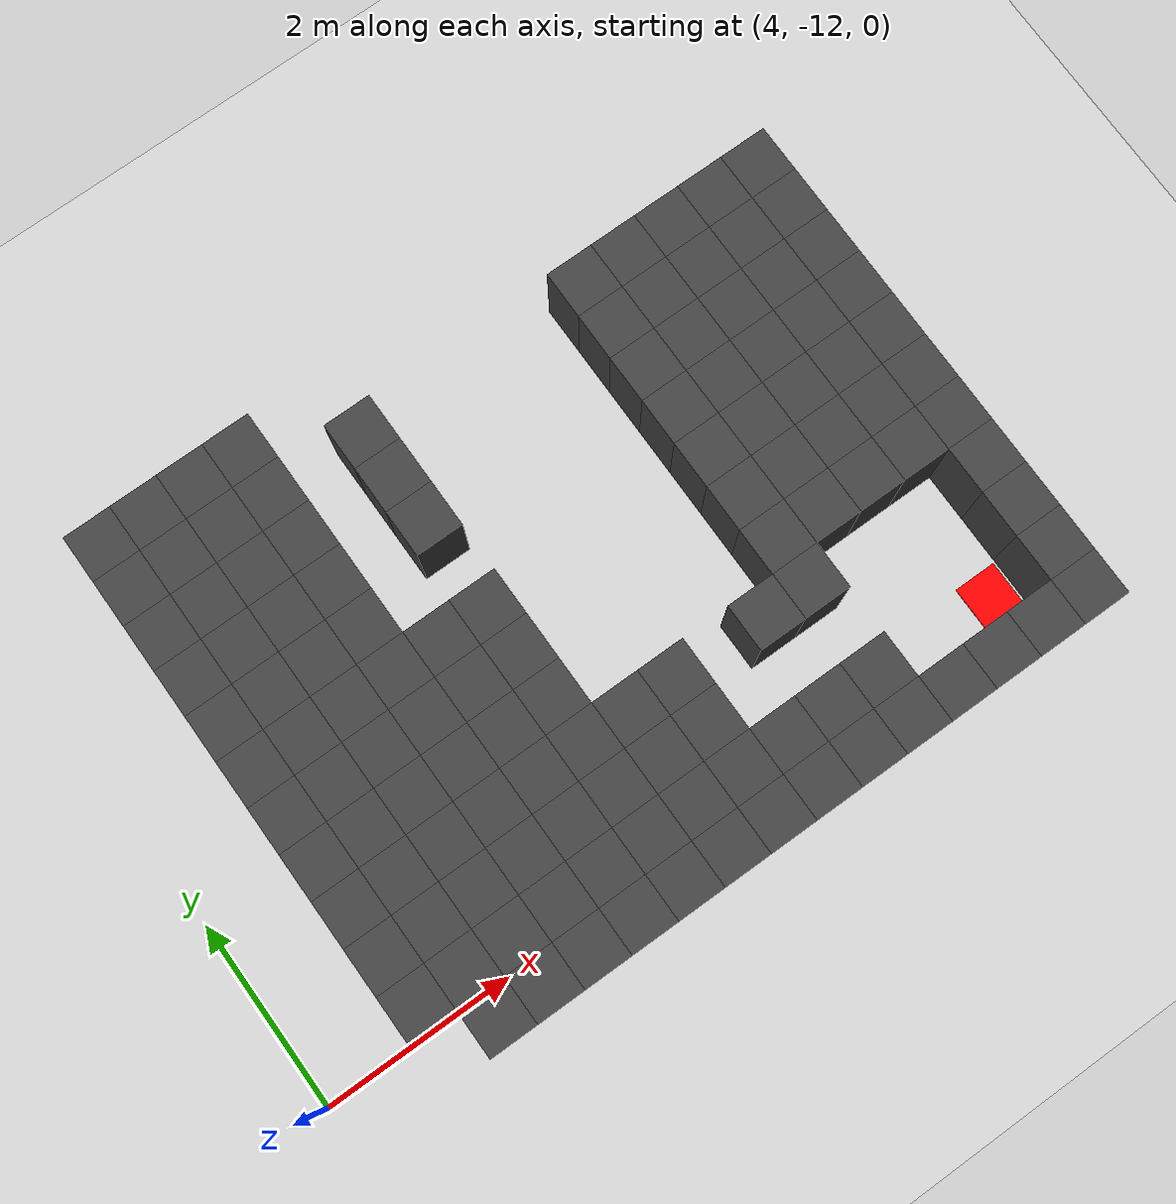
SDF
<sdf version="1.7">
 <world name="map_10726">
  <model name="ground_plane">
   <static>true</static>
   <link name="link">
    <collision name="collision">
     <geometry><plane><normal>0 0 1</normal><size>200 200</size></plane></geometry>
    </collision>
    <visual name="visual">
     <geometry><plane><normal>0 0 1</normal><size>200 200</size></plane></geometry>
     <material><ambient>0.8 0.8 0.8 1</ambient><diffuse>0.8 0.8 0.8 1</diffuse></material>
    </visual>
   </link>
  </model>
  <model name="maze_environment">
   <static>true</static>
   <link name="wall_1630">
    <pose>5.250 -6.750 0.500 0 0 0</pose>
    <collision name="col"><geometry><box><size>0.5 0.5 1.0</size></box></geometry></collision>
    <visual name="vis">
     <geometry><box><size>0.5 0.5 1.0</size></box></geometry>
     <material><ambient>0.15 0.15 0.15 1</ambient><diffuse>0.25 0.25 0.25 1</diffuse></material>
    </visual>
   </link>
   <link name="wall_1631">
    <pose>5.750 -6.750 0.500 0 0 0</pose>
    <collision name="col"><geometry><box><size>0.5 0.5 1.0</size></box></geometry></collision>
    <visual name="vis">
     <geometry><box><size>0.5 0.5 1.0</size></box></geometry>
     <material><ambient>0.15 0.15 0.15 1</ambient><diffuse>0.25 0.25 0.25 1</diffuse></material>
    </visual>
   </link>
   <link name="wall_1632">
    <pose>6.250 -6.750 0.500 0 0 0</pose>
    <collision name="col"><geometry><box><size>0.5 0.5 1.0</size></box></geometry></collision>
    <visual name="vis">
     <geometry><box><size>0.5 0.5 1.0</size></box></geometry>
     <material><ambient>0.15 0.15 0.15 1</ambient><diffuse>0.25 0.25 0.25 1</diffuse></material>
    </visual>
   </link>
   <link name="wall_1633">
    <pose>6.750 -6.750 0.500 0 0 0</pose>
    <collision name="col"><geometry><box><size>0.5 0.5 1.0</size></box></geometry></collision>
    <visual name="vis">
     <geometry><box><size>0.5 0.5 1.0</size></box></geometry>
     <material><ambient>0.15 0.15 0.15 1</ambient><diffuse>0.25 0.25 0.25 1</diffuse></material>
    </visual>
   </link>
   <link name="wall_1671">
    <pose>5.250 -7.250 0.500 0 0 0</pose>
    <collision name="col"><geometry><box><size>0.5 0.5 1.0</size></box></geometry></collision>
    <visual name="vis">
     <geometry><box><size>0.5 0.5 1.0</size></box></geometry>
     <material><ambient>0.15 0.15 0.15 1</ambient><diffuse>0.25 0.25 0.25 1</diffuse></material>
    </visual>
   </link>
   <link name="wall_1672">
    <pose>5.750 -7.250 0.500 0 0 0</pose>
    <collision name="col"><geometry><box><size>0.5 0.5 1.0</size></box></geometry></collision>
    <visual name="vis">
     <geometry><box><size>0.5 0.5 1.0</size></box></geometry>
     <material><ambient>0.15 0.15 0.15 1</ambient><diffuse>0.25 0.25 0.25 1</diffuse></material>
    </visual>
   </link>
   <link name="wall_1673">
    <pose>6.250 -7.250 0.500 0 0 0</pose>
    <collision name="col"><geometry><box><size>0.5 0.5 1.0</size></box></geometry></collision>
    <visual name="vis">
     <geometry><box><size>0.5 0.5 1.0</size></box></geometry>
     <material><ambient>0.15 0.15 0.15 1</ambient><diffuse>0.25 0.25 0.25 1</diffuse></material>
    </visual>
   </link>
   <link name="wall_1674">
    <pose>6.750 -7.250 0.500 0 0 0</pose>
    <collision name="col"><geometry><box><size>0.5 0.5 1.0</size></box></geometry></collision>
    <visual name="vis">
     <geometry><box><size>0.5 0.5 1.0</size></box></geometry>
     <material><ambient>0.15 0.15 0.15 1</ambient><diffuse>0.25 0.25 0.25 1</diffuse></material>
    </visual>
   </link>
   <link name="wall_1675">
    <pose>7.750 -7.250 0.500 0 0 0</pose>
    <collision name="col"><geometry><box><size>0.5 0.5 1.0</size></box></geometry></collision>
    <visual name="vis">
     <geometry><box><size>0.5 0.5 1.0</size></box></geometry>
     <material><ambient>0.15 0.15 0.15 1</ambient><diffuse>0.25 0.25 0.25 1</diffuse></material>
    </visual>
   </link>
   <link name="wall_1676">
    <pose>10.250 -7.250 0.500 0 0 0</pose>
    <collision name="col"><geometry><box><size>0.5 0.5 1.0</size></box></geometry></collision>
    <visual name="vis">
     <geometry><box><size>0.5 0.5 1.0</size></box></geometry>
     <material><ambient>0.15 0.15 0.15 1</ambient><diffuse>0.25 0.25 0.25 1</diffuse></material>
    </visual>
   </link>
   <link name="wall_1677">
    <pose>10.750 -7.250 0.500 0 0 0</pose>
    <collision name="col"><geometry><box><size>0.5 0.5 1.0</size></box></geometry></collision>
    <visual name="vis">
     <geometry><box><size>0.5 0.5 1.0</size></box></geometry>
     <material><ambient>0.15 0.15 0.15 1</ambient><diffuse>0.25 0.25 0.25 1</diffuse></material>
    </visual>
   </link>
   <link name="wall_1678">
    <pose>11.250 -7.250 0.500 0 0 0</pose>
    <collision name="col"><geometry><box><size>0.5 0.5 1.0</size></box></geometry></collision>
    <visual name="vis">
     <geometry><box><size>0.5 0.5 1.0</size></box></geometry>
     <material><ambient>0.15 0.15 0.15 1</ambient><diffuse>0.25 0.25 0.25 1</diffuse></material>
    </visual>
   </link>
   <link name="wall_1679">
    <pose>11.750 -7.250 0.500 0 0 0</pose>
    <collision name="col"><geometry><box><size>0.5 0.5 1.0</size></box></geometry></collision>
    <visual name="vis">
     <geometry><box><size>0.5 0.5 1.0</size></box></geometry>
     <material><ambient>0.15 0.15 0.15 1</ambient><diffuse>0.25 0.25 0.25 1</diffuse></material>
    </visual>
   </link>
   <link name="wall_1680">
    <pose>12.250 -7.250 0.500 0 0 0</pose>
    <collision name="col"><geometry><box><size>0.5 0.5 1.0</size></box></geometry></collision>
    <visual name="vis">
     <geometry><box><size>0.5 0.5 1.0</size></box></geometry>
     <material><ambient>0.15 0.15 0.15 1</ambient><diffuse>0.25 0.25 0.25 1</diffuse></material>
    </visual>
   </link>
   <link name="wall_1708">
    <pose>5.250 -7.750 0.500 0 0 0</pose>
    <collision name="col"><geometry><box><size>0.5 0.5 1.0</size></box></geometry></collision>
    <visual name="vis">
     <geometry><box><size>0.5 0.5 1.0</size></box></geometry>
     <material><ambient>0.15 0.15 0.15 1</ambient><diffuse>0.25 0.25 0.25 1</diffuse></material>
    </visual>
   </link>
   <link name="wall_1709">
    <pose>5.750 -7.750 0.500 0 0 0</pose>
    <collision name="col"><geometry><box><size>0.5 0.5 1.0</size></box></geometry></collision>
    <visual name="vis">
     <geometry><box><size>0.5 0.5 1.0</size></box></geometry>
     <material><ambient>0.15 0.15 0.15 1</ambient><diffuse>0.25 0.25 0.25 1</diffuse></material>
    </visual>
   </link>
   <link name="wall_1710">
    <pose>6.250 -7.750 0.500 0 0 0</pose>
    <collision name="col"><geometry><box><size>0.5 0.5 1.0</size></box></geometry></collision>
    <visual name="vis">
     <geometry><box><size>0.5 0.5 1.0</size></box></geometry>
     <material><ambient>0.15 0.15 0.15 1</ambient><diffuse>0.25 0.25 0.25 1</diffuse></material>
    </visual>
   </link>
   <link name="wall_1711">
    <pose>6.750 -7.750 0.500 0 0 0</pose>
    <collision name="col"><geometry><box><size>0.5 0.5 1.0</size></box></geometry></collision>
    <visual name="vis">
     <geometry><box><size>0.5 0.5 1.0</size></box></geometry>
     <material><ambient>0.15 0.15 0.15 1</ambient><diffuse>0.25 0.25 0.25 1</diffuse></material>
    </visual>
   </link>
   <link name="wall_1712">
    <pose>7.750 -7.750 0.500 0 0 0</pose>
    <collision name="col"><geometry><box><size>0.5 0.5 1.0</size></box></geometry></collision>
    <visual name="vis">
     <geometry><box><size>0.5 0.5 1.0</size></box></geometry>
     <material><ambient>0.15 0.15 0.15 1</ambient><diffuse>0.25 0.25 0.25 1</diffuse></material>
    </visual>
   </link>
   <link name="wall_1713">
    <pose>10.250 -7.750 0.500 0 0 0</pose>
    <collision name="col"><geometry><box><size>0.5 0.5 1.0</size></box></geometry></collision>
    <visual name="vis">
     <geometry><box><size>0.5 0.5 1.0</size></box></geometry>
     <material><ambient>0.15 0.15 0.15 1</ambient><diffuse>0.25 0.25 0.25 1</diffuse></material>
    </visual>
   </link>
   <link name="wall_1714">
    <pose>10.750 -7.750 0.500 0 0 0</pose>
    <collision name="col"><geometry><box><size>0.5 0.5 1.0</size></box></geometry></collision>
    <visual name="vis">
     <geometry><box><size>0.5 0.5 1.0</size></box></geometry>
     <material><ambient>0.15 0.15 0.15 1</ambient><diffuse>0.25 0.25 0.25 1</diffuse></material>
    </visual>
   </link>
   <link name="wall_1715">
    <pose>11.250 -7.750 0.500 0 0 0</pose>
    <collision name="col"><geometry><box><size>0.5 0.5 1.0</size></box></geometry></collision>
    <visual name="vis">
     <geometry><box><size>0.5 0.5 1.0</size></box></geometry>
     <material><ambient>0.15 0.15 0.15 1</ambient><diffuse>0.25 0.25 0.25 1</diffuse></material>
    </visual>
   </link>
   <link name="wall_1716">
    <pose>11.750 -7.750 0.500 0 0 0</pose>
    <collision name="col"><geometry><box><size>0.5 0.5 1.0</size></box></geometry></collision>
    <visual name="vis">
     <geometry><box><size>0.5 0.5 1.0</size></box></geometry>
     <material><ambient>0.15 0.15 0.15 1</ambient><diffuse>0.25 0.25 0.25 1</diffuse></material>
    </visual>
   </link>
   <link name="wall_1717">
    <pose>12.250 -7.750 0.500 0 0 0</pose>
    <collision name="col"><geometry><box><size>0.5 0.5 1.0</size></box></geometry></collision>
    <visual name="vis">
     <geometry><box><size>0.5 0.5 1.0</size></box></geometry>
     <material><ambient>0.15 0.15 0.15 1</ambient><diffuse>0.25 0.25 0.25 1</diffuse></material>
    </visual>
   </link>
   <link name="wall_1745">
    <pose>5.250 -8.250 0.500 0 0 0</pose>
    <collision name="col"><geometry><box><size>0.5 0.5 1.0</size></box></geometry></collision>
    <visual name="vis">
     <geometry><box><size>0.5 0.5 1.0</size></box></geometry>
     <material><ambient>0.15 0.15 0.15 1</ambient><diffuse>0.25 0.25 0.25 1</diffuse></material>
    </visual>
   </link>
   <link name="wall_1746">
    <pose>5.750 -8.250 0.500 0 0 0</pose>
    <collision name="col"><geometry><box><size>0.5 0.5 1.0</size></box></geometry></collision>
    <visual name="vis">
     <geometry><box><size>0.5 0.5 1.0</size></box></geometry>
     <material><ambient>0.15 0.15 0.15 1</ambient><diffuse>0.25 0.25 0.25 1</diffuse></material>
    </visual>
   </link>
   <link name="wall_1747">
    <pose>6.250 -8.250 0.500 0 0 0</pose>
    <collision name="col"><geometry><box><size>0.5 0.5 1.0</size></box></geometry></collision>
    <visual name="vis">
     <geometry><box><size>0.5 0.5 1.0</size></box></geometry>
     <material><ambient>0.15 0.15 0.15 1</ambient><diffuse>0.25 0.25 0.25 1</diffuse></material>
    </visual>
   </link>
   <link name="wall_1748">
    <pose>6.750 -8.250 0.500 0 0 0</pose>
    <collision name="col"><geometry><box><size>0.5 0.5 1.0</size></box></geometry></collision>
    <visual name="vis">
     <geometry><box><size>0.5 0.5 1.0</size></box></geometry>
     <material><ambient>0.15 0.15 0.15 1</ambient><diffuse>0.25 0.25 0.25 1</diffuse></material>
    </visual>
   </link>
   <link name="wall_1749">
    <pose>7.750 -8.250 0.500 0 0 0</pose>
    <collision name="col"><geometry><box><size>0.5 0.5 1.0</size></box></geometry></collision>
    <visual name="vis">
     <geometry><box><size>0.5 0.5 1.0</size></box></geometry>
     <material><ambient>0.15 0.15 0.15 1</ambient><diffuse>0.25 0.25 0.25 1</diffuse></material>
    </visual>
   </link>
   <link name="wall_1750">
    <pose>10.250 -8.250 0.500 0 0 0</pose>
    <collision name="col"><geometry><box><size>0.5 0.5 1.0</size></box></geometry></collision>
    <visual name="vis">
     <geometry><box><size>0.5 0.5 1.0</size></box></geometry>
     <material><ambient>0.15 0.15 0.15 1</ambient><diffuse>0.25 0.25 0.25 1</diffuse></material>
    </visual>
   </link>
   <link name="wall_1751">
    <pose>10.750 -8.250 0.500 0 0 0</pose>
    <collision name="col"><geometry><box><size>0.5 0.5 1.0</size></box></geometry></collision>
    <visual name="vis">
     <geometry><box><size>0.5 0.5 1.0</size></box></geometry>
     <material><ambient>0.15 0.15 0.15 1</ambient><diffuse>0.25 0.25 0.25 1</diffuse></material>
    </visual>
   </link>
   <link name="wall_1752">
    <pose>11.250 -8.250 0.500 0 0 0</pose>
    <collision name="col"><geometry><box><size>0.5 0.5 1.0</size></box></geometry></collision>
    <visual name="vis">
     <geometry><box><size>0.5 0.5 1.0</size></box></geometry>
     <material><ambient>0.15 0.15 0.15 1</ambient><diffuse>0.25 0.25 0.25 1</diffuse></material>
    </visual>
   </link>
   <link name="wall_1753">
    <pose>11.750 -8.250 0.500 0 0 0</pose>
    <collision name="col"><geometry><box><size>0.5 0.5 1.0</size></box></geometry></collision>
    <visual name="vis">
     <geometry><box><size>0.5 0.5 1.0</size></box></geometry>
     <material><ambient>0.15 0.15 0.15 1</ambient><diffuse>0.25 0.25 0.25 1</diffuse></material>
    </visual>
   </link>
   <link name="wall_1754">
    <pose>12.250 -8.250 0.500 0 0 0</pose>
    <collision name="col"><geometry><box><size>0.5 0.5 1.0</size></box></geometry></collision>
    <visual name="vis">
     <geometry><box><size>0.5 0.5 1.0</size></box></geometry>
     <material><ambient>0.15 0.15 0.15 1</ambient><diffuse>0.25 0.25 0.25 1</diffuse></material>
    </visual>
   </link>
   <link name="wall_1782">
    <pose>5.250 -8.750 0.500 0 0 0</pose>
    <collision name="col"><geometry><box><size>0.5 0.5 1.0</size></box></geometry></collision>
    <visual name="vis">
     <geometry><box><size>0.5 0.5 1.0</size></box></geometry>
     <material><ambient>0.15 0.15 0.15 1</ambient><diffuse>0.25 0.25 0.25 1</diffuse></material>
    </visual>
   </link>
   <link name="wall_1783">
    <pose>5.750 -8.750 0.500 0 0 0</pose>
    <collision name="col"><geometry><box><size>0.5 0.5 1.0</size></box></geometry></collision>
    <visual name="vis">
     <geometry><box><size>0.5 0.5 1.0</size></box></geometry>
     <material><ambient>0.15 0.15 0.15 1</ambient><diffuse>0.25 0.25 0.25 1</diffuse></material>
    </visual>
   </link>
   <link name="wall_1784">
    <pose>6.250 -8.750 0.500 0 0 0</pose>
    <collision name="col"><geometry><box><size>0.5 0.5 1.0</size></box></geometry></collision>
    <visual name="vis">
     <geometry><box><size>0.5 0.5 1.0</size></box></geometry>
     <material><ambient>0.15 0.15 0.15 1</ambient><diffuse>0.25 0.25 0.25 1</diffuse></material>
    </visual>
   </link>
   <link name="wall_1785">
    <pose>6.750 -8.750 0.500 0 0 0</pose>
    <collision name="col"><geometry><box><size>0.5 0.5 1.0</size></box></geometry></collision>
    <visual name="vis">
     <geometry><box><size>0.5 0.5 1.0</size></box></geometry>
     <material><ambient>0.15 0.15 0.15 1</ambient><diffuse>0.25 0.25 0.25 1</diffuse></material>
    </visual>
   </link>
   <link name="wall_1786">
    <pose>10.250 -8.750 0.500 0 0 0</pose>
    <collision name="col"><geometry><box><size>0.5 0.5 1.0</size></box></geometry></collision>
    <visual name="vis">
     <geometry><box><size>0.5 0.5 1.0</size></box></geometry>
     <material><ambient>0.15 0.15 0.15 1</ambient><diffuse>0.25 0.25 0.25 1</diffuse></material>
    </visual>
   </link>
   <link name="wall_1787">
    <pose>10.750 -8.750 0.500 0 0 0</pose>
    <collision name="col"><geometry><box><size>0.5 0.5 1.0</size></box></geometry></collision>
    <visual name="vis">
     <geometry><box><size>0.5 0.5 1.0</size></box></geometry>
     <material><ambient>0.15 0.15 0.15 1</ambient><diffuse>0.25 0.25 0.25 1</diffuse></material>
    </visual>
   </link>
   <link name="wall_1788">
    <pose>11.250 -8.750 0.500 0 0 0</pose>
    <collision name="col"><geometry><box><size>0.5 0.5 1.0</size></box></geometry></collision>
    <visual name="vis">
     <geometry><box><size>0.5 0.5 1.0</size></box></geometry>
     <material><ambient>0.15 0.15 0.15 1</ambient><diffuse>0.25 0.25 0.25 1</diffuse></material>
    </visual>
   </link>
   <link name="wall_1789">
    <pose>11.750 -8.750 0.500 0 0 0</pose>
    <collision name="col"><geometry><box><size>0.5 0.5 1.0</size></box></geometry></collision>
    <visual name="vis">
     <geometry><box><size>0.5 0.5 1.0</size></box></geometry>
     <material><ambient>0.15 0.15 0.15 1</ambient><diffuse>0.25 0.25 0.25 1</diffuse></material>
    </visual>
   </link>
   <link name="wall_1790">
    <pose>12.250 -8.750 0.500 0 0 0</pose>
    <collision name="col"><geometry><box><size>0.5 0.5 1.0</size></box></geometry></collision>
    <visual name="vis">
     <geometry><box><size>0.5 0.5 1.0</size></box></geometry>
     <material><ambient>0.15 0.15 0.15 1</ambient><diffuse>0.25 0.25 0.25 1</diffuse></material>
    </visual>
   </link>
   <link name="wall_1818">
    <pose>5.250 -9.250 0.500 0 0 0</pose>
    <collision name="col"><geometry><box><size>0.5 0.5 1.0</size></box></geometry></collision>
    <visual name="vis">
     <geometry><box><size>0.5 0.5 1.0</size></box></geometry>
     <material><ambient>0.15 0.15 0.15 1</ambient><diffuse>0.25 0.25 0.25 1</diffuse></material>
    </visual>
   </link>
   <link name="wall_1819">
    <pose>5.750 -9.250 0.500 0 0 0</pose>
    <collision name="col"><geometry><box><size>0.5 0.5 1.0</size></box></geometry></collision>
    <visual name="vis">
     <geometry><box><size>0.5 0.5 1.0</size></box></geometry>
     <material><ambient>0.15 0.15 0.15 1</ambient><diffuse>0.25 0.25 0.25 1</diffuse></material>
    </visual>
   </link>
   <link name="wall_1820">
    <pose>6.250 -9.250 0.500 0 0 0</pose>
    <collision name="col"><geometry><box><size>0.5 0.5 1.0</size></box></geometry></collision>
    <visual name="vis">
     <geometry><box><size>0.5 0.5 1.0</size></box></geometry>
     <material><ambient>0.15 0.15 0.15 1</ambient><diffuse>0.25 0.25 0.25 1</diffuse></material>
    </visual>
   </link>
   <link name="wall_1821">
    <pose>6.750 -9.250 0.500 0 0 0</pose>
    <collision name="col"><geometry><box><size>0.5 0.5 1.0</size></box></geometry></collision>
    <visual name="vis">
     <geometry><box><size>0.5 0.5 1.0</size></box></geometry>
     <material><ambient>0.15 0.15 0.15 1</ambient><diffuse>0.25 0.25 0.25 1</diffuse></material>
    </visual>
   </link>
   <link name="wall_1822">
    <pose>7.250 -9.250 0.500 0 0 0</pose>
    <collision name="col"><geometry><box><size>0.5 0.5 1.0</size></box></geometry></collision>
    <visual name="vis">
     <geometry><box><size>0.5 0.5 1.0</size></box></geometry>
     <material><ambient>0.15 0.15 0.15 1</ambient><diffuse>0.25 0.25 0.25 1</diffuse></material>
    </visual>
   </link>
   <link name="wall_1823">
    <pose>7.750 -9.250 0.500 0 0 0</pose>
    <collision name="col"><geometry><box><size>0.5 0.5 1.0</size></box></geometry></collision>
    <visual name="vis">
     <geometry><box><size>0.5 0.5 1.0</size></box></geometry>
     <material><ambient>0.15 0.15 0.15 1</ambient><diffuse>0.25 0.25 0.25 1</diffuse></material>
    </visual>
   </link>
   <link name="wall_1824">
    <pose>10.250 -9.250 0.500 0 0 0</pose>
    <collision name="col"><geometry><box><size>0.5 0.5 1.0</size></box></geometry></collision>
    <visual name="vis">
     <geometry><box><size>0.5 0.5 1.0</size></box></geometry>
     <material><ambient>0.15 0.15 0.15 1</ambient><diffuse>0.25 0.25 0.25 1</diffuse></material>
    </visual>
   </link>
   <link name="wall_1825">
    <pose>10.750 -9.250 0.500 0 0 0</pose>
    <collision name="col"><geometry><box><size>0.5 0.5 1.0</size></box></geometry></collision>
    <visual name="vis">
     <geometry><box><size>0.5 0.5 1.0</size></box></geometry>
     <material><ambient>0.15 0.15 0.15 1</ambient><diffuse>0.25 0.25 0.25 1</diffuse></material>
    </visual>
   </link>
   <link name="wall_1826">
    <pose>11.250 -9.250 0.500 0 0 0</pose>
    <collision name="col"><geometry><box><size>0.5 0.5 1.0</size></box></geometry></collision>
    <visual name="vis">
     <geometry><box><size>0.5 0.5 1.0</size></box></geometry>
     <material><ambient>0.15 0.15 0.15 1</ambient><diffuse>0.25 0.25 0.25 1</diffuse></material>
    </visual>
   </link>
   <link name="wall_1827">
    <pose>11.750 -9.250 0.500 0 0 0</pose>
    <collision name="col"><geometry><box><size>0.5 0.5 1.0</size></box></geometry></collision>
    <visual name="vis">
     <geometry><box><size>0.5 0.5 1.0</size></box></geometry>
     <material><ambient>0.15 0.15 0.15 1</ambient><diffuse>0.25 0.25 0.25 1</diffuse></material>
    </visual>
   </link>
   <link name="wall_1828">
    <pose>12.250 -9.250 0.500 0 0 0</pose>
    <collision name="col"><geometry><box><size>0.5 0.5 1.0</size></box></geometry></collision>
    <visual name="vis">
     <geometry><box><size>0.5 0.5 1.0</size></box></geometry>
     <material><ambient>0.15 0.15 0.15 1</ambient><diffuse>0.25 0.25 0.25 1</diffuse></material>
    </visual>
   </link>
   <link name="wall_1856">
    <pose>5.250 -9.750 0.500 0 0 0</pose>
    <collision name="col"><geometry><box><size>0.5 0.5 1.0</size></box></geometry></collision>
    <visual name="vis">
     <geometry><box><size>0.5 0.5 1.0</size></box></geometry>
     <material><ambient>0.15 0.15 0.15 1</ambient><diffuse>0.25 0.25 0.25 1</diffuse></material>
    </visual>
   </link>
   <link name="wall_1857">
    <pose>5.750 -9.750 0.500 0 0 0</pose>
    <collision name="col"><geometry><box><size>0.5 0.5 1.0</size></box></geometry></collision>
    <visual name="vis">
     <geometry><box><size>0.5 0.5 1.0</size></box></geometry>
     <material><ambient>0.15 0.15 0.15 1</ambient><diffuse>0.25 0.25 0.25 1</diffuse></material>
    </visual>
   </link>
   <link name="wall_1858">
    <pose>6.250 -9.750 0.500 0 0 0</pose>
    <collision name="col"><geometry><box><size>0.5 0.5 1.0</size></box></geometry></collision>
    <visual name="vis">
     <geometry><box><size>0.5 0.5 1.0</size></box></geometry>
     <material><ambient>0.15 0.15 0.15 1</ambient><diffuse>0.25 0.25 0.25 1</diffuse></material>
    </visual>
   </link>
   <link name="wall_1859">
    <pose>6.750 -9.750 0.500 0 0 0</pose>
    <collision name="col"><geometry><box><size>0.5 0.5 1.0</size></box></geometry></collision>
    <visual name="vis">
     <geometry><box><size>0.5 0.5 1.0</size></box></geometry>
     <material><ambient>0.15 0.15 0.15 1</ambient><diffuse>0.25 0.25 0.25 1</diffuse></material>
    </visual>
   </link>
   <link name="wall_1860">
    <pose>7.250 -9.750 0.500 0 0 0</pose>
    <collision name="col"><geometry><box><size>0.5 0.5 1.0</size></box></geometry></collision>
    <visual name="vis">
     <geometry><box><size>0.5 0.5 1.0</size></box></geometry>
     <material><ambient>0.15 0.15 0.15 1</ambient><diffuse>0.25 0.25 0.25 1</diffuse></material>
    </visual>
   </link>
   <link name="wall_1861">
    <pose>7.750 -9.750 0.500 0 0 0</pose>
    <collision name="col"><geometry><box><size>0.5 0.5 1.0</size></box></geometry></collision>
    <visual name="vis">
     <geometry><box><size>0.5 0.5 1.0</size></box></geometry>
     <material><ambient>0.15 0.15 0.15 1</ambient><diffuse>0.25 0.25 0.25 1</diffuse></material>
    </visual>
   </link>
   <link name="wall_1862">
    <pose>10.250 -9.750 0.500 0 0 0</pose>
    <collision name="col"><geometry><box><size>0.5 0.5 1.0</size></box></geometry></collision>
    <visual name="vis">
     <geometry><box><size>0.5 0.5 1.0</size></box></geometry>
     <material><ambient>0.15 0.15 0.15 1</ambient><diffuse>0.25 0.25 0.25 1</diffuse></material>
    </visual>
   </link>
   <link name="wall_1863">
    <pose>10.750 -9.750 0.500 0 0 0</pose>
    <collision name="col"><geometry><box><size>0.5 0.5 1.0</size></box></geometry></collision>
    <visual name="vis">
     <geometry><box><size>0.5 0.5 1.0</size></box></geometry>
     <material><ambient>0.15 0.15 0.15 1</ambient><diffuse>0.25 0.25 0.25 1</diffuse></material>
    </visual>
   </link>
   <link name="wall_1864">
    <pose>11.250 -9.750 0.500 0 0 0</pose>
    <collision name="col"><geometry><box><size>0.5 0.5 1.0</size></box></geometry></collision>
    <visual name="vis">
     <geometry><box><size>0.5 0.5 1.0</size></box></geometry>
     <material><ambient>0.15 0.15 0.15 1</ambient><diffuse>0.25 0.25 0.25 1</diffuse></material>
    </visual>
   </link>
   <link name="wall_1865">
    <pose>11.750 -9.750 0.500 0 0 0</pose>
    <collision name="col"><geometry><box><size>0.5 0.5 1.0</size></box></geometry></collision>
    <visual name="vis">
     <geometry><box><size>0.5 0.5 1.0</size></box></geometry>
     <material><ambient>0.15 0.15 0.15 1</ambient><diffuse>0.25 0.25 0.25 1</diffuse></material>
    </visual>
   </link>
   <link name="wall_1866">
    <pose>12.250 -9.750 0.500 0 0 0</pose>
    <collision name="col"><geometry><box><size>0.5 0.5 1.0</size></box></geometry></collision>
    <visual name="vis">
     <geometry><box><size>0.5 0.5 1.0</size></box></geometry>
     <material><ambient>0.15 0.15 0.15 1</ambient><diffuse>0.25 0.25 0.25 1</diffuse></material>
    </visual>
   </link>
   <link name="wall_1902">
    <pose>5.250 -10.250 0.500 0 0 0</pose>
    <collision name="col"><geometry><box><size>0.5 0.5 1.0</size></box></geometry></collision>
    <visual name="vis">
     <geometry><box><size>0.5 0.5 1.0</size></box></geometry>
     <material><ambient>0.15 0.15 0.15 1</ambient><diffuse>0.25 0.25 0.25 1</diffuse></material>
    </visual>
   </link>
   <link name="wall_1903">
    <pose>5.750 -10.250 0.500 0 0 0</pose>
    <collision name="col"><geometry><box><size>0.5 0.5 1.0</size></box></geometry></collision>
    <visual name="vis">
     <geometry><box><size>0.5 0.5 1.0</size></box></geometry>
     <material><ambient>0.15 0.15 0.15 1</ambient><diffuse>0.25 0.25 0.25 1</diffuse></material>
    </visual>
   </link>
   <link name="wall_1904">
    <pose>6.250 -10.250 0.500 0 0 0</pose>
    <collision name="col"><geometry><box><size>0.5 0.5 1.0</size></box></geometry></collision>
    <visual name="vis">
     <geometry><box><size>0.5 0.5 1.0</size></box></geometry>
     <material><ambient>0.15 0.15 0.15 1</ambient><diffuse>0.25 0.25 0.25 1</diffuse></material>
    </visual>
   </link>
   <link name="wall_1905">
    <pose>6.750 -10.250 0.500 0 0 0</pose>
    <collision name="col"><geometry><box><size>0.5 0.5 1.0</size></box></geometry></collision>
    <visual name="vis">
     <geometry><box><size>0.5 0.5 1.0</size></box></geometry>
     <material><ambient>0.15 0.15 0.15 1</ambient><diffuse>0.25 0.25 0.25 1</diffuse></material>
    </visual>
   </link>
   <link name="wall_1906">
    <pose>7.250 -10.250 0.500 0 0 0</pose>
    <collision name="col"><geometry><box><size>0.5 0.5 1.0</size></box></geometry></collision>
    <visual name="vis">
     <geometry><box><size>0.5 0.5 1.0</size></box></geometry>
     <material><ambient>0.15 0.15 0.15 1</ambient><diffuse>0.25 0.25 0.25 1</diffuse></material>
    </visual>
   </link>
   <link name="wall_1907">
    <pose>7.750 -10.250 0.500 0 0 0</pose>
    <collision name="col"><geometry><box><size>0.5 0.5 1.0</size></box></geometry></collision>
    <visual name="vis">
     <geometry><box><size>0.5 0.5 1.0</size></box></geometry>
     <material><ambient>0.15 0.15 0.15 1</ambient><diffuse>0.25 0.25 0.25 1</diffuse></material>
    </visual>
   </link>
   <link name="wall_1908">
    <pose>10.250 -10.250 0.500 0 0 0</pose>
    <collision name="col"><geometry><box><size>0.5 0.5 1.0</size></box></geometry></collision>
    <visual name="vis">
     <geometry><box><size>0.5 0.5 1.0</size></box></geometry>
     <material><ambient>0.15 0.15 0.15 1</ambient><diffuse>0.25 0.25 0.25 1</diffuse></material>
    </visual>
   </link>
   <link name="wall_1909">
    <pose>10.750 -10.250 0.500 0 0 0</pose>
    <collision name="col"><geometry><box><size>0.5 0.5 1.0</size></box></geometry></collision>
    <visual name="vis">
     <geometry><box><size>0.5 0.5 1.0</size></box></geometry>
     <material><ambient>0.15 0.15 0.15 1</ambient><diffuse>0.25 0.25 0.25 1</diffuse></material>
    </visual>
   </link>
   <link name="wall_1910">
    <pose>11.250 -10.250 0.500 0 0 0</pose>
    <collision name="col"><geometry><box><size>0.5 0.5 1.0</size></box></geometry></collision>
    <visual name="vis">
     <geometry><box><size>0.5 0.5 1.0</size></box></geometry>
     <material><ambient>0.15 0.15 0.15 1</ambient><diffuse>0.25 0.25 0.25 1</diffuse></material>
    </visual>
   </link>
   <link name="wall_1911">
    <pose>11.750 -10.250 0.500 0 0 0</pose>
    <collision name="col"><geometry><box><size>0.5 0.5 1.0</size></box></geometry></collision>
    <visual name="vis">
     <geometry><box><size>0.5 0.5 1.0</size></box></geometry>
     <material><ambient>0.15 0.15 0.15 1</ambient><diffuse>0.25 0.25 0.25 1</diffuse></material>
    </visual>
   </link>
   <link name="wall_1912">
    <pose>12.250 -10.250 0.500 0 0 0</pose>
    <collision name="col"><geometry><box><size>0.5 0.5 1.0</size></box></geometry></collision>
    <visual name="vis">
     <geometry><box><size>0.5 0.5 1.0</size></box></geometry>
     <material><ambient>0.15 0.15 0.15 1</ambient><diffuse>0.25 0.25 0.25 1</diffuse></material>
    </visual>
   </link>
   <link name="wall_1948">
    <pose>5.250 -10.750 0.500 0 0 0</pose>
    <collision name="col"><geometry><box><size>0.5 0.5 1.0</size></box></geometry></collision>
    <visual name="vis">
     <geometry><box><size>0.5 0.5 1.0</size></box></geometry>
     <material><ambient>0.15 0.15 0.15 1</ambient><diffuse>0.25 0.25 0.25 1</diffuse></material>
    </visual>
   </link>
   <link name="wall_1949">
    <pose>5.750 -10.750 0.500 0 0 0</pose>
    <collision name="col"><geometry><box><size>0.5 0.5 1.0</size></box></geometry></collision>
    <visual name="vis">
     <geometry><box><size>0.5 0.5 1.0</size></box></geometry>
     <material><ambient>0.15 0.15 0.15 1</ambient><diffuse>0.25 0.25 0.25 1</diffuse></material>
    </visual>
   </link>
   <link name="wall_1950">
    <pose>6.250 -10.750 0.500 0 0 0</pose>
    <collision name="col"><geometry><box><size>0.5 0.5 1.0</size></box></geometry></collision>
    <visual name="vis">
     <geometry><box><size>0.5 0.5 1.0</size></box></geometry>
     <material><ambient>0.15 0.15 0.15 1</ambient><diffuse>0.25 0.25 0.25 1</diffuse></material>
    </visual>
   </link>
   <link name="wall_1951">
    <pose>6.750 -10.750 0.500 0 0 0</pose>
    <collision name="col"><geometry><box><size>0.5 0.5 1.0</size></box></geometry></collision>
    <visual name="vis">
     <geometry><box><size>0.5 0.5 1.0</size></box></geometry>
     <material><ambient>0.15 0.15 0.15 1</ambient><diffuse>0.25 0.25 0.25 1</diffuse></material>
    </visual>
   </link>
   <link name="wall_1952">
    <pose>7.250 -10.750 0.500 0 0 0</pose>
    <collision name="col"><geometry><box><size>0.5 0.5 1.0</size></box></geometry></collision>
    <visual name="vis">
     <geometry><box><size>0.5 0.5 1.0</size></box></geometry>
     <material><ambient>0.15 0.15 0.15 1</ambient><diffuse>0.25 0.25 0.25 1</diffuse></material>
    </visual>
   </link>
   <link name="wall_1953">
    <pose>7.750 -10.750 0.500 0 0 0</pose>
    <collision name="col"><geometry><box><size>0.5 0.5 1.0</size></box></geometry></collision>
    <visual name="vis">
     <geometry><box><size>0.5 0.5 1.0</size></box></geometry>
     <material><ambient>0.15 0.15 0.15 1</ambient><diffuse>0.25 0.25 0.25 1</diffuse></material>
    </visual>
   </link>
   <link name="wall_1954">
    <pose>8.250 -10.750 0.500 0 0 0</pose>
    <collision name="col"><geometry><box><size>0.5 0.5 1.0</size></box></geometry></collision>
    <visual name="vis">
     <geometry><box><size>0.5 0.5 1.0</size></box></geometry>
     <material><ambient>0.15 0.15 0.15 1</ambient><diffuse>0.25 0.25 0.25 1</diffuse></material>
    </visual>
   </link>
   <link name="wall_1955">
    <pose>8.750 -10.750 0.500 0 0 0</pose>
    <collision name="col"><geometry><box><size>0.5 0.5 1.0</size></box></geometry></collision>
    <visual name="vis">
     <geometry><box><size>0.5 0.5 1.0</size></box></geometry>
     <material><ambient>0.15 0.15 0.15 1</ambient><diffuse>0.25 0.25 0.25 1</diffuse></material>
    </visual>
   </link>
   <link name="wall_1956">
    <pose>9.750 -10.750 0.500 0 0 0</pose>
    <collision name="col"><geometry><box><size>0.5 0.5 1.0</size></box></geometry></collision>
    <visual name="vis">
     <geometry><box><size>0.5 0.5 1.0</size></box></geometry>
     <material><ambient>0.15 0.15 0.15 1</ambient><diffuse>0.25 0.25 0.25 1</diffuse></material>
    </visual>
   </link>
   <link name="wall_1957">
    <pose>10.250 -10.750 0.500 0 0 0</pose>
    <collision name="col"><geometry><box><size>0.5 0.5 1.0</size></box></geometry></collision>
    <visual name="vis">
     <geometry><box><size>0.5 0.5 1.0</size></box></geometry>
     <material><ambient>0.15 0.15 0.15 1</ambient><diffuse>0.25 0.25 0.25 1</diffuse></material>
    </visual>
   </link>
   <link name="wall_1958">
    <pose>12.250 -10.750 0.500 0 0 0</pose>
    <collision name="col"><geometry><box><size>0.5 0.5 1.0</size></box></geometry></collision>
    <visual name="vis">
     <geometry><box><size>0.5 0.5 1.0</size></box></geometry>
     <material><ambient>0.15 0.15 0.15 1</ambient><diffuse>0.25 0.25 0.25 1</diffuse></material>
    </visual>
   </link>
   <link name="wall_1994">
    <pose>5.250 -11.250 0.500 0 0 0</pose>
    <collision name="col"><geometry><box><size>0.5 0.5 1.0</size></box></geometry></collision>
    <visual name="vis">
     <geometry><box><size>0.5 0.5 1.0</size></box></geometry>
     <material><ambient>0.15 0.15 0.15 1</ambient><diffuse>0.25 0.25 0.25 1</diffuse></material>
    </visual>
   </link>
   <link name="wall_1995">
    <pose>5.750 -11.250 0.500 0 0 0</pose>
    <collision name="col"><geometry><box><size>0.5 0.5 1.0</size></box></geometry></collision>
    <visual name="vis">
     <geometry><box><size>0.5 0.5 1.0</size></box></geometry>
     <material><ambient>0.15 0.15 0.15 1</ambient><diffuse>0.25 0.25 0.25 1</diffuse></material>
    </visual>
   </link>
   <link name="wall_1996">
    <pose>6.250 -11.250 0.500 0 0 0</pose>
    <collision name="col"><geometry><box><size>0.5 0.5 1.0</size></box></geometry></collision>
    <visual name="vis">
     <geometry><box><size>0.5 0.5 1.0</size></box></geometry>
     <material><ambient>0.15 0.15 0.15 1</ambient><diffuse>0.25 0.25 0.25 1</diffuse></material>
    </visual>
   </link>
   <link name="wall_1997">
    <pose>6.750 -11.250 0.500 0 0 0</pose>
    <collision name="col"><geometry><box><size>0.5 0.5 1.0</size></box></geometry></collision>
    <visual name="vis">
     <geometry><box><size>0.5 0.5 1.0</size></box></geometry>
     <material><ambient>0.15 0.15 0.15 1</ambient><diffuse>0.25 0.25 0.25 1</diffuse></material>
    </visual>
   </link>
   <link name="wall_1998">
    <pose>7.250 -11.250 0.500 0 0 0</pose>
    <collision name="col"><geometry><box><size>0.5 0.5 1.0</size></box></geometry></collision>
    <visual name="vis">
     <geometry><box><size>0.5 0.5 1.0</size></box></geometry>
     <material><ambient>0.15 0.15 0.15 1</ambient><diffuse>0.25 0.25 0.25 1</diffuse></material>
    </visual>
   </link>
   <link name="wall_1999">
    <pose>7.750 -11.250 0.500 0 0 0</pose>
    <collision name="col"><geometry><box><size>0.5 0.5 1.0</size></box></geometry></collision>
    <visual name="vis">
     <geometry><box><size>0.5 0.5 1.0</size></box></geometry>
     <material><ambient>0.15 0.15 0.15 1</ambient><diffuse>0.25 0.25 0.25 1</diffuse></material>
    </visual>
   </link>
   <link name="wall_2000">
    <pose>8.250 -11.250 0.500 0 0 0</pose>
    <collision name="col"><geometry><box><size>0.5 0.5 1.0</size></box></geometry></collision>
    <visual name="vis">
     <geometry><box><size>0.5 0.5 1.0</size></box></geometry>
     <material><ambient>0.15 0.15 0.15 1</ambient><diffuse>0.25 0.25 0.25 1</diffuse></material>
    </visual>
   </link>
   <link name="wall_2001">
    <pose>8.750 -11.250 0.500 0 0 0</pose>
    <collision name="col"><geometry><box><size>0.5 0.5 1.0</size></box></geometry></collision>
    <visual name="vis">
     <geometry><box><size>0.5 0.5 1.0</size></box></geometry>
     <material><ambient>0.15 0.15 0.15 1</ambient><diffuse>0.25 0.25 0.25 1</diffuse></material>
    </visual>
   </link>
   <link name="wall_2002">
    <pose>12.250 -11.250 0.500 0 0 0</pose>
    <collision name="col"><geometry><box><size>0.5 0.5 1.0</size></box></geometry></collision>
    <visual name="vis">
     <geometry><box><size>0.5 0.5 1.0</size></box></geometry>
     <material><ambient>0.15 0.15 0.15 1</ambient><diffuse>0.25 0.25 0.25 1</diffuse></material>
    </visual>
   </link>
   <link name="wall_2038">
    <pose>5.250 -11.750 0.500 0 0 0</pose>
    <collision name="col"><geometry><box><size>0.5 0.5 1.0</size></box></geometry></collision>
    <visual name="vis">
     <geometry><box><size>0.5 0.5 1.0</size></box></geometry>
     <material><ambient>0.15 0.15 0.15 1</ambient><diffuse>0.25 0.25 0.25 1</diffuse></material>
    </visual>
   </link>
   <link name="wall_2039">
    <pose>5.750 -11.750 0.500 0 0 0</pose>
    <collision name="col"><geometry><box><size>0.5 0.5 1.0</size></box></geometry></collision>
    <visual name="vis">
     <geometry><box><size>0.5 0.5 1.0</size></box></geometry>
     <material><ambient>0.15 0.15 0.15 1</ambient><diffuse>0.25 0.25 0.25 1</diffuse></material>
    </visual>
   </link>
   <link name="wall_2040">
    <pose>6.250 -11.750 0.500 0 0 0</pose>
    <collision name="col"><geometry><box><size>0.5 0.5 1.0</size></box></geometry></collision>
    <visual name="vis">
     <geometry><box><size>0.5 0.5 1.0</size></box></geometry>
     <material><ambient>0.15 0.15 0.15 1</ambient><diffuse>0.25 0.25 0.25 1</diffuse></material>
    </visual>
   </link>
   <link name="wall_2041">
    <pose>6.750 -11.750 0.500 0 0 0</pose>
    <collision name="col"><geometry><box><size>0.5 0.5 1.0</size></box></geometry></collision>
    <visual name="vis">
     <geometry><box><size>0.5 0.5 1.0</size></box></geometry>
     <material><ambient>0.15 0.15 0.15 1</ambient><diffuse>0.25 0.25 0.25 1</diffuse></material>
    </visual>
   </link>
   <link name="wall_2042">
    <pose>7.250 -11.750 0.500 0 0 0</pose>
    <collision name="col"><geometry><box><size>0.5 0.5 1.0</size></box></geometry></collision>
    <visual name="vis">
     <geometry><box><size>0.5 0.5 1.0</size></box></geometry>
     <material><ambient>0.15 0.15 0.15 1</ambient><diffuse>0.25 0.25 0.25 1</diffuse></material>
    </visual>
   </link>
   <link name="wall_2043">
    <pose>7.750 -11.750 0.500 0 0 0</pose>
    <collision name="col"><geometry><box><size>0.5 0.5 1.0</size></box></geometry></collision>
    <visual name="vis">
     <geometry><box><size>0.5 0.5 1.0</size></box></geometry>
     <material><ambient>0.15 0.15 0.15 1</ambient><diffuse>0.25 0.25 0.25 1</diffuse></material>
    </visual>
   </link>
   <link name="wall_2044">
    <pose>8.250 -11.750 0.500 0 0 0</pose>
    <collision name="col"><geometry><box><size>0.5 0.5 1.0</size></box></geometry></collision>
    <visual name="vis">
     <geometry><box><size>0.5 0.5 1.0</size></box></geometry>
     <material><ambient>0.15 0.15 0.15 1</ambient><diffuse>0.25 0.25 0.25 1</diffuse></material>
    </visual>
   </link>
   <link name="wall_2045">
    <pose>8.750 -11.750 0.500 0 0 0</pose>
    <collision name="col"><geometry><box><size>0.5 0.5 1.0</size></box></geometry></collision>
    <visual name="vis">
     <geometry><box><size>0.5 0.5 1.0</size></box></geometry>
     <material><ambient>0.15 0.15 0.15 1</ambient><diffuse>0.25 0.25 0.25 1</diffuse></material>
    </visual>
   </link>
   <link name="wall_2046">
    <pose>9.250 -11.750 0.500 0 0 0</pose>
    <collision name="col"><geometry><box><size>0.5 0.5 1.0</size></box></geometry></collision>
    <visual name="vis">
     <geometry><box><size>0.5 0.5 1.0</size></box></geometry>
     <material><ambient>0.15 0.15 0.15 1</ambient><diffuse>0.25 0.25 0.25 1</diffuse></material>
    </visual>
   </link>
   <link name="wall_2047">
    <pose>9.750 -11.750 0.500 0 0 0</pose>
    <collision name="col"><geometry><box><size>0.5 0.5 1.0</size></box></geometry></collision>
    <visual name="vis">
     <geometry><box><size>0.5 0.5 1.0</size></box></geometry>
     <material><ambient>0.15 0.15 0.15 1</ambient><diffuse>0.25 0.25 0.25 1</diffuse></material>
    </visual>
   </link>
   <link name="wall_2048">
    <pose>10.250 -11.750 0.500 0 0 0</pose>
    <collision name="col"><geometry><box><size>0.5 0.5 1.0</size></box></geometry></collision>
    <visual name="vis">
     <geometry><box><size>0.5 0.5 1.0</size></box></geometry>
     <material><ambient>0.15 0.15 0.15 1</ambient><diffuse>0.25 0.25 0.25 1</diffuse></material>
    </visual>
   </link>
   <link name="wall_2049">
    <pose>12.250 -11.750 0.500 0 0 0</pose>
    <collision name="col"><geometry><box><size>0.5 0.5 1.0</size></box></geometry></collision>
    <visual name="vis">
     <geometry><box><size>0.5 0.5 1.0</size></box></geometry>
     <material><ambient>0.15 0.15 0.15 1</ambient><diffuse>0.25 0.25 0.25 1</diffuse></material>
    </visual>
   </link>
   <link name="wall_2086">
    <pose>5.750 -12.250 0.500 0 0 0</pose>
    <collision name="col"><geometry><box><size>0.5 0.5 1.0</size></box></geometry></collision>
    <visual name="vis">
     <geometry><box><size>0.5 0.5 1.0</size></box></geometry>
     <material><ambient>0.15 0.15 0.15 1</ambient><diffuse>0.25 0.25 0.25 1</diffuse></material>
    </visual>
   </link>
   <link name="wall_2087">
    <pose>6.250 -12.250 0.500 0 0 0</pose>
    <collision name="col"><geometry><box><size>0.5 0.5 1.0</size></box></geometry></collision>
    <visual name="vis">
     <geometry><box><size>0.5 0.5 1.0</size></box></geometry>
     <material><ambient>0.15 0.15 0.15 1</ambient><diffuse>0.25 0.25 0.25 1</diffuse></material>
    </visual>
   </link>
   <link name="wall_2088">
    <pose>6.750 -12.250 0.500 0 0 0</pose>
    <collision name="col"><geometry><box><size>0.5 0.5 1.0</size></box></geometry></collision>
    <visual name="vis">
     <geometry><box><size>0.5 0.5 1.0</size></box></geometry>
     <material><ambient>0.15 0.15 0.15 1</ambient><diffuse>0.25 0.25 0.25 1</diffuse></material>
    </visual>
   </link>
   <link name="wall_2089">
    <pose>7.250 -12.250 0.500 0 0 0</pose>
    <collision name="col"><geometry><box><size>0.5 0.5 1.0</size></box></geometry></collision>
    <visual name="vis">
     <geometry><box><size>0.5 0.5 1.0</size></box></geometry>
     <material><ambient>0.15 0.15 0.15 1</ambient><diffuse>0.25 0.25 0.25 1</diffuse></material>
    </visual>
   </link>
   <link name="wall_2090">
    <pose>7.750 -12.250 0.500 0 0 0</pose>
    <collision name="col"><geometry><box><size>0.5 0.5 1.0</size></box></geometry></collision>
    <visual name="vis">
     <geometry><box><size>0.5 0.5 1.0</size></box></geometry>
     <material><ambient>0.15 0.15 0.15 1</ambient><diffuse>0.25 0.25 0.25 1</diffuse></material>
    </visual>
   </link>
   <link name="wall_2091">
    <pose>8.250 -12.250 0.500 0 0 0</pose>
    <collision name="col"><geometry><box><size>0.5 0.5 1.0</size></box></geometry></collision>
    <visual name="vis">
     <geometry><box><size>0.5 0.5 1.0</size></box></geometry>
     <material><ambient>0.15 0.15 0.15 1</ambient><diffuse>0.25 0.25 0.25 1</diffuse></material>
    </visual>
   </link>
   <link name="wall_2092">
    <pose>8.750 -12.250 0.500 0 0 0</pose>
    <collision name="col"><geometry><box><size>0.5 0.5 1.0</size></box></geometry></collision>
    <visual name="vis">
     <geometry><box><size>0.5 0.5 1.0</size></box></geometry>
     <material><ambient>0.15 0.15 0.15 1</ambient><diffuse>0.25 0.25 0.25 1</diffuse></material>
    </visual>
   </link>
   <link name="wall_2093">
    <pose>9.250 -12.250 0.500 0 0 0</pose>
    <collision name="col"><geometry><box><size>0.5 0.5 1.0</size></box></geometry></collision>
    <visual name="vis">
     <geometry><box><size>0.5 0.5 1.0</size></box></geometry>
     <material><ambient>0.15 0.15 0.15 1</ambient><diffuse>0.25 0.25 0.25 1</diffuse></material>
    </visual>
   </link>
   <link name="wall_2094">
    <pose>9.750 -12.250 0.500 0 0 0</pose>
    <collision name="col"><geometry><box><size>0.5 0.5 1.0</size></box></geometry></collision>
    <visual name="vis">
     <geometry><box><size>0.5 0.5 1.0</size></box></geometry>
     <material><ambient>0.15 0.15 0.15 1</ambient><diffuse>0.25 0.25 0.25 1</diffuse></material>
    </visual>
   </link>
   <link name="wall_2095">
    <pose>10.250 -12.250 0.500 0 0 0</pose>
    <collision name="col"><geometry><box><size>0.5 0.5 1.0</size></box></geometry></collision>
    <visual name="vis">
     <geometry><box><size>0.5 0.5 1.0</size></box></geometry>
     <material><ambient>0.15 0.15 0.15 1</ambient><diffuse>0.25 0.25 0.25 1</diffuse></material>
    </visual>
   </link>
   <link name="wall_2096">
    <pose>10.750 -12.250 0.500 0 0 0</pose>
    <collision name="col"><geometry><box><size>0.5 0.5 1.0</size></box></geometry></collision>
    <visual name="vis">
     <geometry><box><size>0.5 0.5 1.0</size></box></geometry>
     <material><ambient>0.15 0.15 0.15 1</ambient><diffuse>0.25 0.25 0.25 1</diffuse></material>
    </visual>
   </link>
   <link name="wall_2097">
    <pose>11.250 -12.250 0.500 0 0 0</pose>
    <collision name="col"><geometry><box><size>0.5 0.5 1.0</size></box></geometry></collision>
    <visual name="vis">
     <geometry><box><size>0.5 0.5 1.0</size></box></geometry>
     <material><ambient>0.15 0.15 0.15 1</ambient><diffuse>0.25 0.25 0.25 1</diffuse></material>
    </visual>
   </link>
   <link name="wall_2098">
    <pose>11.750 -12.250 0.500 0 0 0</pose>
    <collision name="col"><geometry><box><size>0.5 0.5 1.0</size></box></geometry></collision>
    <visual name="vis">
     <geometry><box><size>0.5 0.5 1.0</size></box></geometry>
     <material><ambient>0.15 0.15 0.15 1</ambient><diffuse>0.25 0.25 0.25 1</diffuse></material>
    </visual>
   </link>
   <link name="wall_2099">
    <pose>12.250 -12.250 0.500 0 0 0</pose>
    <collision name="col"><geometry><box><size>0.5 0.5 1.0</size></box></geometry></collision>
    <visual name="vis">
     <geometry><box><size>0.5 0.5 1.0</size></box></geometry>
     <material><ambient>0.15 0.15 0.15 1</ambient><diffuse>0.25 0.25 0.25 1</diffuse></material>
    </visual>
   </link>
   <link name="goal_zone">
    <pose>11.750 -11.750 0.005 0 0 0</pose>
    <visual name="vis">
     <geometry><box><size>0.45 0.45 0.01</size></box></geometry>
     <material>
      <ambient>1.0 0.0 0.0 1</ambient>
      <diffuse>1.0 0.0 0.0 1</diffuse>
      <emissive>0.60 0.00 0.00 1</emissive>
     </material>
    </visual>
   </link>
  </model>
 </world>
</sdf>
